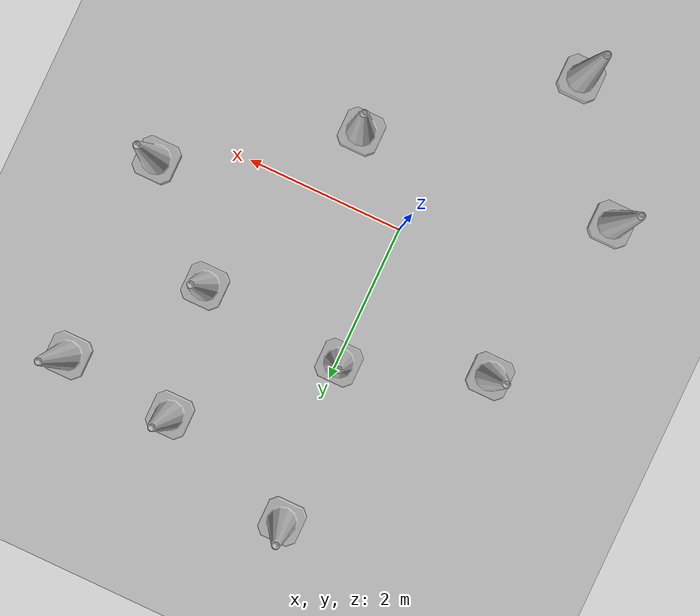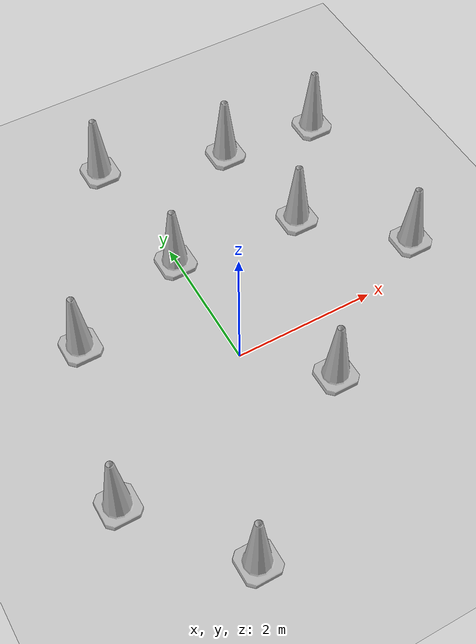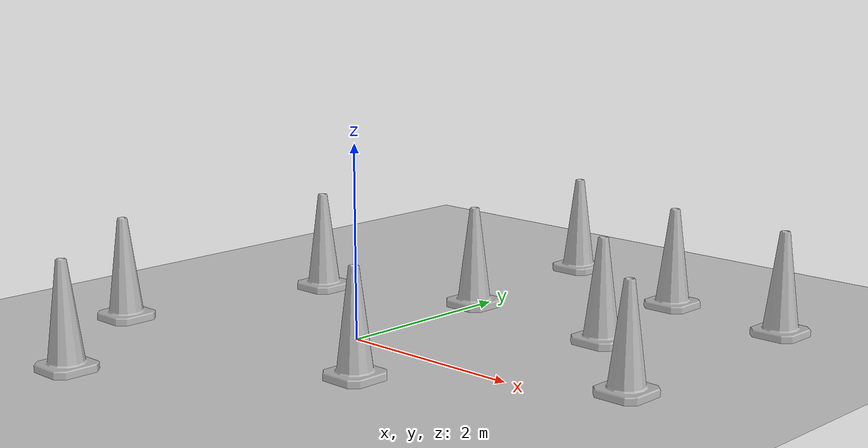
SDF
<sdf version="1.7">
 <world name="default">
  <light name="sun" type="directional">
   <pose>0 0 10 0 -0 0</pose>
   <diffuse>0.8 0.8 0.8 1</diffuse>
   <specular>0.2 0.2 0.2 1</specular>
   <attenuation>
    <range>1000</range>
    <constant>0.9</constant>
    <linear>0.01</linear>
    <quadratic>0.001</quadratic>
   </attenuation>
   <direction>-0.5 0.1 -0.9</direction>
   <spot><inner_angle>0</inner_angle><outer_angle>0</outer_angle><falloff>0</falloff></spot>
  </light>
  <model name="ground_plane">
   <static>1</static>
   <link name="link">
    <collision name="collision">
     <geometry><plane><normal>0 0 1</normal><size>100 100</size></plane></geometry>
     <surface>
      <contact><collide_bitmask>65535</collide_bitmask></contact>
      <friction><ode><mu>100</mu><mu2>50</mu2></ode></friction>
     </surface>
    </collision>
    <visual name="visual">
     <cast_shadows>0</cast_shadows>
     <geometry><plane><normal>0 0 1</normal><size>100 100</size></plane></geometry>
     <material>
      <script><uri>file://media/materials/scripts/gazebo.material</uri><name>Gazebo/Grey</name></script>
     </material>
    </visual>
   </link>
  </model>
  <gravity>0 0 -9.8</gravity>
  <magnetic_field>6e-06 2.3e-05 -4.2e-05</magnetic_field>
  <atmosphere type="adiabatic"/>
  <physics type="ode">
   <max_step_size>0.001</max_step_size>
   <real_time_factor>1</real_time_factor>
   <real_time_update_rate>1000</real_time_update_rate>
  </physics>
  <scene><ambient>0.4 0.4 0.4 1</ambient><background>0.7 0.7 0.7 1</background><shadows>1</shadows></scene>
  <audio><device>default</device></audio>
  <spherical_coordinates>
   <surface_model>EARTH_WGS84</surface_model>
   <latitude_deg>0</latitude_deg>
   <longitude_deg>0</longitude_deg>
   <elevation>0</elevation>
   <heading_deg>0</heading_deg>
  </spherical_coordinates>
  <model name="Construction Cone">
   <link name="link">
    <collision name="collision">
     <geometry>
      <mesh><scale>10 10 10</scale><uri>model://construction_cone/meshes/construction_cone.dae</uri></mesh>
     </geometry>
    </collision>
    <visual name="visual">
     <geometry>
      <mesh><scale>10 10 10</scale><uri>model://construction_cone/meshes/construction_cone.dae</uri></mesh>
     </geometry>
    </visual>
    <inertial>
     <inertia><ixx>1</ixx><ixy>0</ixy><ixz>0</ixz><iyy>1</iyy><iyz>0</iyz><izz>1</izz></inertia>
     <mass>1</mass>
    </inertial>
   </link>
   <pose>1.8472 1.62383 -1e-05 -1e-06 0 0</pose>
  </model>
  <model name="Construction Cone_clone">
   <link name="link">
    <collision name="collision">
     <geometry>
      <mesh><scale>10 10 10</scale><uri>model://construction_cone/meshes/construction_cone.dae</uri></mesh>
     </geometry>
    </collision>
    <visual name="visual">
     <geometry>
      <mesh><scale>10 10 10</scale><uri>model://construction_cone/meshes/construction_cone.dae</uri></mesh>
     </geometry>
    </visual>
    <inertial>
     <inertia><ixx>1</ixx><ixy>0</ixy><ixz>0</ixz><iyy>1</iyy><iyz>0</iyz><izz>1</izz></inertia>
     <mass>1</mass>
    </inertial>
   </link>
   <pose>3.03221 0.487082 -0 0 -0 0</pose>
  </model>
  <model name="Construction Cone_clone_0">
   <link name="link">
    <collision name="collision">
     <geometry>
      <mesh><scale>10 10 10</scale><uri>model://construction_cone/meshes/construction_cone.dae</uri></mesh>
     </geometry>
    </collision>
    <visual name="visual">
     <geometry>
      <mesh><scale>10 10 10</scale><uri>model://construction_cone/meshes/construction_cone.dae</uri></mesh>
     </geometry>
    </visual>
    <inertial>
     <inertia><ixx>1</ixx><ixy>0</ixy><ixz>0</ixz><iyy>1</iyy><iyz>0</iyz><izz>1</izz></inertia>
     <mass>1</mass>
    </inertial>
   </link>
   <pose>0.921446 -0.885899 -4e-06 4e-06 -1e-06 0</pose>
  </model>
  <model name="Construction Cone_clone_1">
   <link name="link">
    <collision name="collision">
     <geometry>
      <mesh><scale>10 10 10</scale><uri>model://construction_cone/meshes/construction_cone.dae</uri></mesh>
     </geometry>
    </collision>
    <visual name="visual">
     <geometry>
      <mesh><scale>10 10 10</scale><uri>model://construction_cone/meshes/construction_cone.dae</uri></mesh>
     </geometry>
    </visual>
    <inertial>
     <inertia><ixx>1</ixx><ixy>0</ixy><ixz>0</ixz><iyy>1</iyy><iyz>0</iyz><izz>1</izz></inertia>
     <mass>1</mass>
    </inertial>
   </link>
   <pose>1.56774 3.22758 -0 0 -0 0</pose>
  </model>
  <model name="Construction Cone_clone_2">
   <link name="link">
    <collision name="collision">
     <geometry>
      <mesh><scale>10 10 10</scale><uri>model://construction_cone/meshes/construction_cone.dae</uri></mesh>
     </geometry>
    </collision>
    <visual name="visual">
     <geometry>
      <mesh><scale>10 10 10</scale><uri>model://construction_cone/meshes/construction_cone.dae</uri></mesh>
     </geometry>
    </visual>
    <inertial>
     <inertia><ixx>1</ixx><ixy>0</ixy><ixz>0</ixz><iyy>1</iyy><iyz>0</iyz><izz>1</izz></inertia>
     <mass>1</mass>
    </inertial>
   </link>
   <pose>-0.219651 3.82261 -1e-05 0 -0 0</pose>
  </model>
  <model name="Construction Cone_clone_3">
   <link name="link">
    <collision name="collision">
     <geometry>
      <mesh><scale>10 10 10</scale><uri>model://construction_cone/meshes/construction_cone.dae</uri></mesh>
     </geometry>
    </collision>
    <visual name="visual">
     <geometry>
      <mesh><scale>10 10 10</scale><uri>model://construction_cone/meshes/construction_cone.dae</uri></mesh>
     </geometry>
    </visual>
    <inertial>
     <inertia><ixx>1</ixx><ixy>0</ixy><ixz>0</ixz><iyy>1</iyy><iyz>0</iyz><izz>1</izz></inertia>
     <mass>1</mass>
    </inertial>
   </link>
   <pose>-1.76267 1.14421 -1e-06 -4e-06 0 0</pose>
  </model>
  <model name="Construction Cone_clone_4">
   <link name="link">
    <collision name="collision">
     <geometry>
      <mesh><scale>10 10 10</scale><uri>model://construction_cone/meshes/construction_cone.dae</uri></mesh>
     </geometry>
    </collision>
    <visual name="visual">
     <geometry>
      <mesh><scale>10 10 10</scale><uri>model://construction_cone/meshes/construction_cone.dae</uri></mesh>
     </geometry>
    </visual>
    <inertial>
     <inertia><ixx>1</ixx><ixy>0</ixy><ixz>0</ixz><iyy>1</iyy><iyz>0</iyz><izz>1</izz></inertia>
     <mass>1</mass>
    </inertial>
   </link>
   <pose>-2.32364 -1.16054 -0 0 -0 0</pose>
  </model>
  <model name="Construction Cone_clone_5">
   <link name="link">
    <collision name="collision">
     <geometry>
      <mesh><scale>10 10 10</scale><uri>model://construction_cone/meshes/construction_cone.dae</uri></mesh>
     </geometry>
    </collision>
    <visual name="visual">
     <geometry>
      <mesh><scale>10 10 10</scale><uri>model://construction_cone/meshes/construction_cone.dae</uri></mesh>
     </geometry>
    </visual>
    <inertial>
     <inertia><ixx>1</ixx><ixy>0</ixy><ixz>0</ixz><iyy>1</iyy><iyz>0</iyz><izz>1</izz></inertia>
     <mass>1</mass>
    </inertial>
   </link>
   <pose>-1.22944 -2.60704 -0 0 -1e-06 0</pose>
  </model>
  <model name="Construction Cone_clone_6">
   <link name="link">
    <collision name="collision">
     <geometry>
      <mesh><scale>10 10 10</scale><uri>model://construction_cone/meshes/construction_cone.dae</uri></mesh>
     </geometry>
    </collision>
    <visual name="visual">
     <geometry>
      <mesh><scale>10 10 10</scale><uri>model://construction_cone/meshes/construction_cone.dae</uri></mesh>
     </geometry>
    </visual>
    <inertial>
     <inertia><ixx>1</ixx><ixy>0</ixy><ixz>0</ixz><iyy>1</iyy><iyz>0</iyz><izz>1</izz></inertia>
     <mass>1</mass>
    </inertial>
   </link>
   <pose>3.00268 3.09984 -1e-05 -0 -0 -0</pose>
  </model>
  <model name="Construction Cone_clone_7">
   <link name="link">
    <collision name="collision">
     <geometry>
      <mesh><scale>10 10 10</scale><uri>model://construction_cone/meshes/construction_cone.dae</uri></mesh>
     </geometry>
    </collision>
    <visual name="visual">
     <geometry>
      <mesh><scale>10 10 10</scale><uri>model://construction_cone/meshes/construction_cone.dae</uri></mesh>
     </geometry>
    </visual>
    <inertial>
     <inertia><ixx>1</ixx><ixy>0</ixy><ixz>0</ixz><iyy>1</iyy><iyz>0</iyz><izz>1</izz></inertia>
     <mass>1</mass>
    </inertial>
   </link>
   <pose>-0.025642 1.77838 -0 0 -0 0</pose>
  </model>
 </world>
</sdf>
